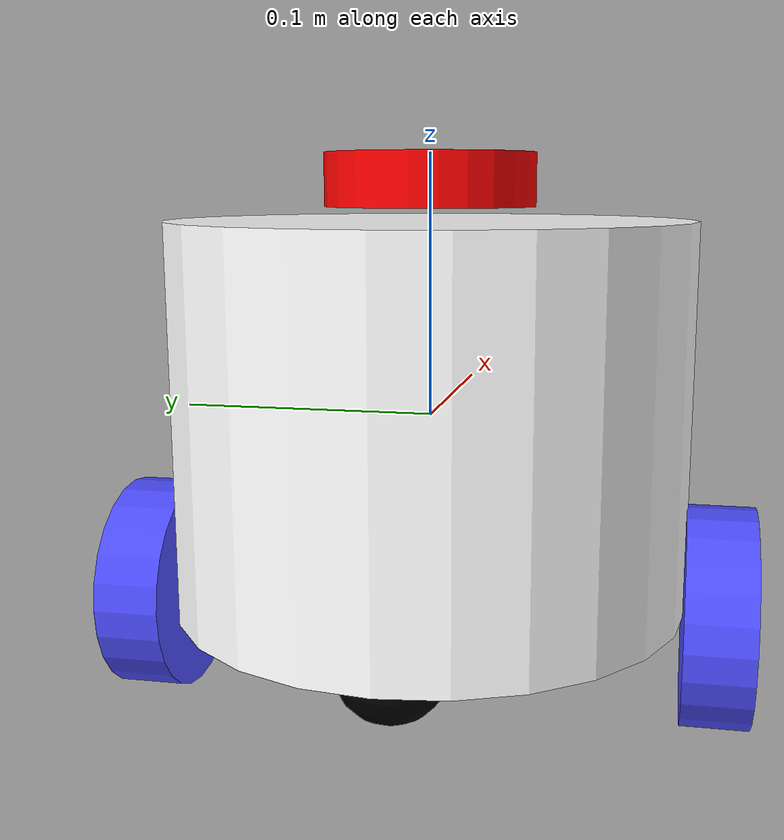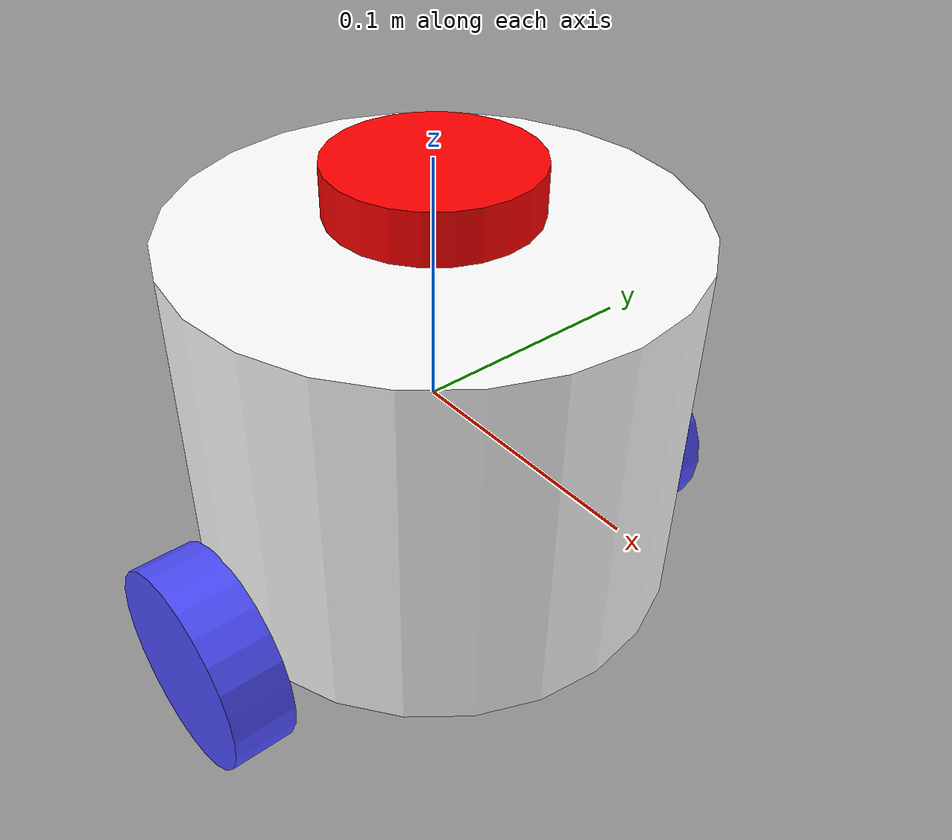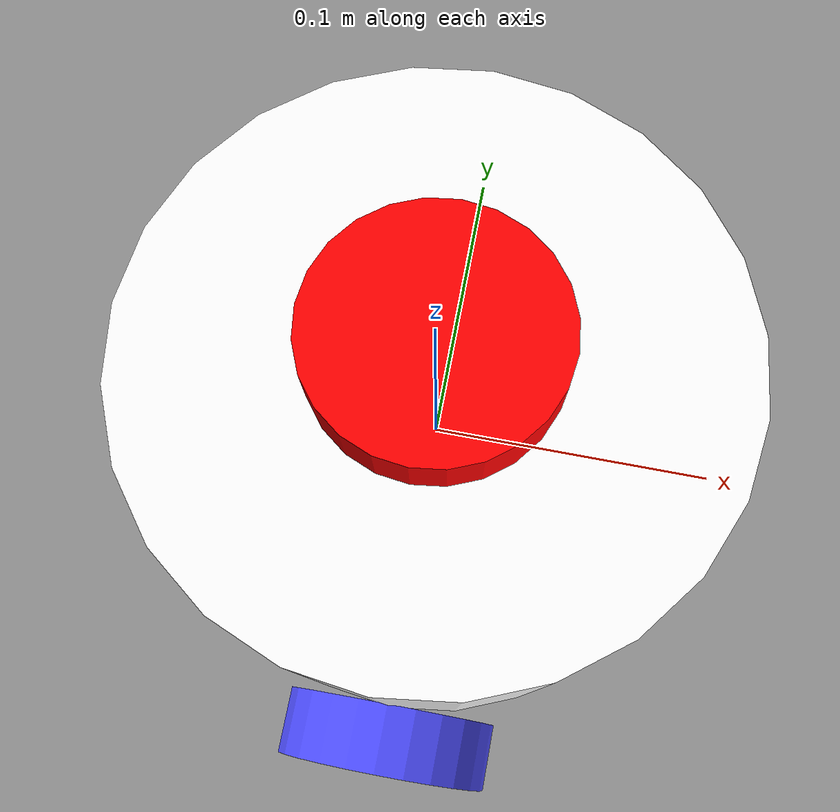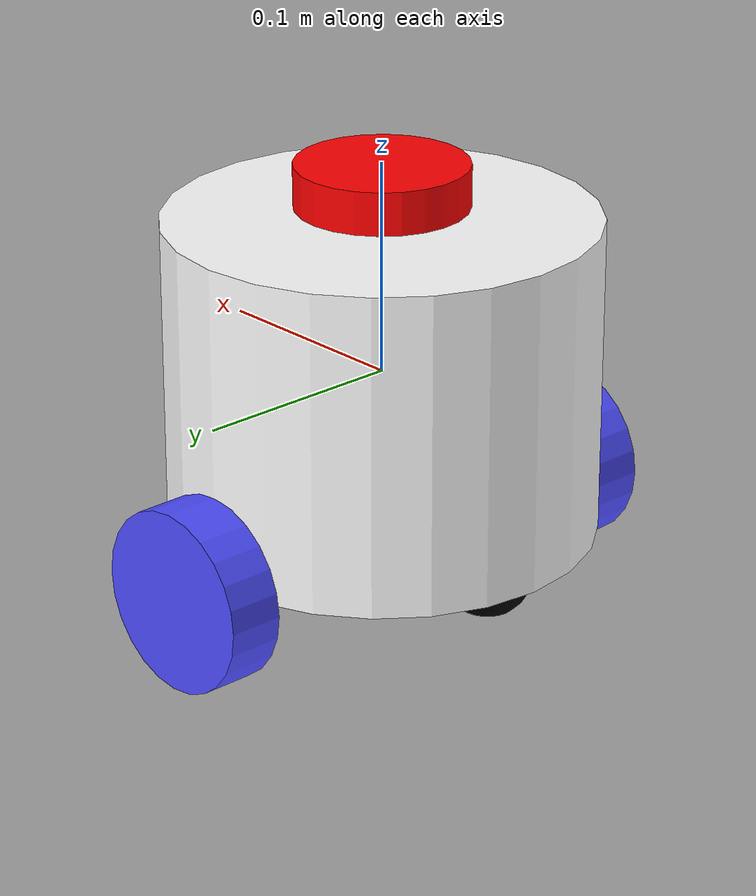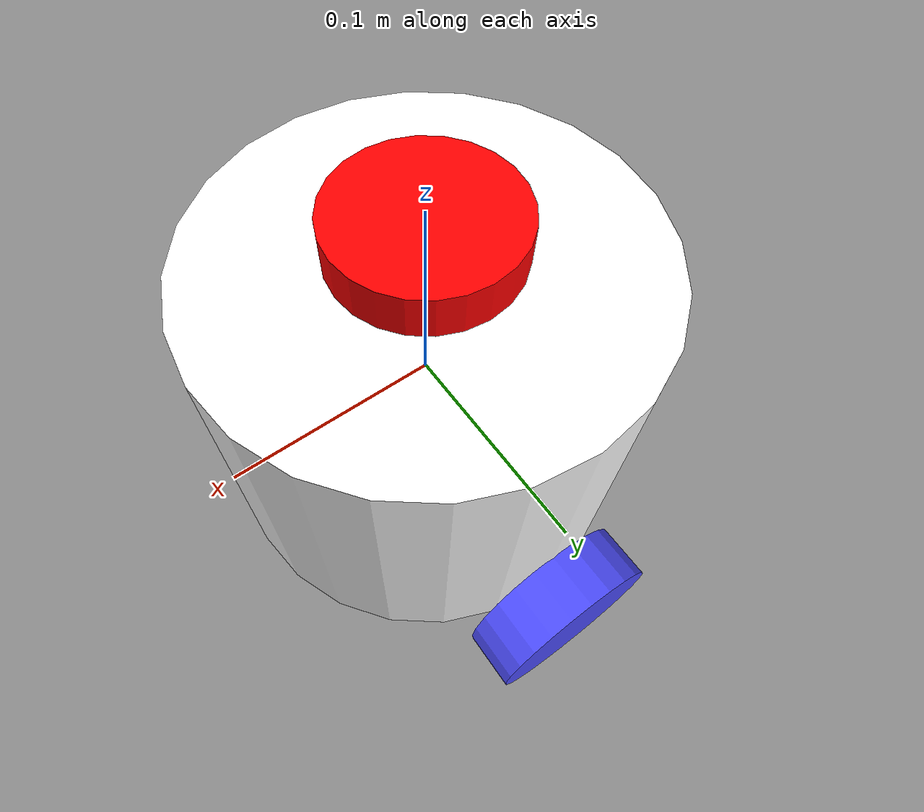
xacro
<?xml version="1.0"?>
<robot xmlns:xacro="http://www.ros.org/wiki/xacro"  name="robot">

    <xacro:arg name="use_ros2_control" default="true"/>
    <xacro:arg name="sim_mode" default="false"/>

    <xacro:include filename="robot_core.xacro" />

    <xacro:if value="$(arg use_ros2_control)">
        <xacro:include filename="ros2_control.xacro" />
    </xacro:if>
    <xacro:unless value="$(arg use_ros2_control)">
        <xacro:include filename="gazebo_control.xacro" />
    </xacro:unless>
    <xacro:include filename="lidar.xacro" />

</robot>

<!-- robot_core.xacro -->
<robot xmlns:xacro="http://www.ros.org/wiki/xacro">

    <xacro:include filename="inertial_macros.xacro"/>

    <material name="white">
        <color rgba="1 1 1 1"/>
    </material>

    <material name="orange">
        <color rgba="1 0.3 0.1 1"/>
    </material>

    <material name="blue">
        <color rgba="0.3 0.3 1 1"/>
    </material>

    <material name="black">
        <color rgba="0 0 0 1"/>
    </material>

    <material name="red">
        <color rgba="1 0 0 1"/>
    </material>

    <!-- base link -->
    <link name="base_link">
    </link>

    <!-- Base foot print -->
    <joint name="base_footprint_joint" type="fixed">
        <parent link="base_link"/>
        <child link="base_footprint"/>
        <origin xyz="0 0 0" rpy="0 0 0"/>
    </joint>

    <link name="base_footprint">
    </link>

    <!-- Chassis -->
    <joint name="chassis_joint" type="fixed">
        <parent link="base_link"/>
        <child link="chassis"/>
        <origin xyz="0 0 0" rpy="0 0 0"/>
    </joint>

    <link name="chassis">
        <visual>
            <origin xyz="0 0 0"/>
            <geometry>
                <cylinder radius="0.1" length="0.15"/>
            </geometry>
            <material name="white"/>
        </visual>

        <collision>
            <origin xyz="0 0 0"/>
            <geometry>
                <cylinder radius="0.1" length="0.15"/>
            </geometry>
        </collision>

        <xacro:inertial_cylinder mass="0.5" radius="0.1" length="0.15">
            <origin xyz="0.0 0.0 0.0" rpy="0.0 0.0 0.0"/>
        </xacro:inertial_cylinder>
    </link>

    <gazebo reference="chassis">
        <material>Gazebo/White</material>
    </gazebo>

    <!-- Left wheel -->
    <joint name="left_wheel_joint" type="continuous">
        <parent link="base_link"/>
        <child link="left_wheel"/>
        <origin xyz="0.0 0.1125 -0.075" rpy="-${pi/2} 0 0" />
        <axis xyz="0.0 0.0 1"/>
    </joint>

    <link name="left_wheel">
        <visual>
            <origin xyz="0 0 0"/>
            <geometry>
                <cylinder radius="0.0425" length="0.026"/>
            </geometry>
            <material name="blue"/>
        </visual>

        <collision>
            <origin xyz="0 0 0"/>
            <geometry>
                <sphere radius="0.0425"/>
            </geometry>
        </collision>

        <xacro:inertial_cylinder mass="0.1" radius="0.0425" length="0.026">
            <origin xyz="0.0 0.0 0.0" rpy="0.0 0.0 0.0"/>
        </xacro:inertial_cylinder>
    </link>

    <gazebo reference="left_wheel">
        <material>Gazebo/Blue</material>
    </gazebo>

    <!-- Right wheel -->
    <joint name="right_wheel_joint" type="continuous">
        <parent link="base_link"/>
        <child link="right_wheel"/>
        <origin xyz="0.0 -0.1125 -0.075" rpy="${pi/2} 0 0" />
        <axis xyz="0.0 0.0 -1"/>
    </joint>

    <link name="right_wheel">
        <visual>
            <origin xyz="0 0 0"/>
            <geometry>
                <cylinder radius="0.0425" length="0.026"/>
            </geometry>
            <material name="blue"/>
        </visual>

        <collision>
            <origin xyz="0 0 0"/>
            <geometry>
                <sphere radius="0.0425"/>
            </geometry>
        </collision>

        <xacro:inertial_cylinder mass="0.1" radius="0.0425" length="0.026">
            <origin xyz="0.0 0.0 0.0" rpy="0.0 0.0 0.0"/>
        </xacro:inertial_cylinder>
    </link>

    <gazebo reference="right_wheel">
        <material>Gazebo/Blue</material>
    </gazebo>

    <!-- Front Castor wheel -->
    <joint name="front_castor_wheel_joint" type="fixed">
        <parent link="chassis"/>
        <child link="front_castor_wheel"/>
        <origin xyz="0.07 0.0 -0.075" rpy="0.0 0.0 0.0"/>
    </joint>

    <link name="front_castor_wheel">
        <visual>
            <origin xyz="0 0 0"/>
            <geometry>
                <sphere radius="0.02125"/>
            </geometry>
            <material name="black"/>
        </visual>

        <collision>
            <origin xyz="0 0 0"/>
            <geometry>
                <sphere radius="0.0425"/>
            </geometry>
        </collision>

        <xacro:inertial_sphere mass="0.1" radius="0.0425">
            <origin xyz="0.0 0.0 0.0" rpy="0.0 0.0 0.0"/>
        </xacro:inertial_sphere>
    </link>

    <gazebo reference="front_castor_wheel">
        <material>Gazebo/Black</material>
        <mu1 value="0.001"/>
        <mu2 value="0.001"/>
    </gazebo>

    <!-- Back Castor wheel -->
    <joint name="back_castor_wheel_joint" type="fixed">
        <parent link="chassis"/>
        <child link="back_castor_wheel"/>
        <origin xyz="-0.07 0.0 -0.075" rpy="0.0 0.0 0.0"/>
    </joint>

    <link name="back_castor_wheel">
        <visual>
            <origin xyz="0 0 0"/>
            <geometry>
                <sphere radius="0.02125"/>
            </geometry>
            <material name="black"/>
        </visual>

        <collision>
            <origin xyz="0 0 0"/>
            <geometry>
                <sphere radius="0.0425"/>
            </geometry>
        </collision>

        <xacro:inertial_sphere mass="0.1" radius="0.0425">
            <origin xyz="0.0 0.0 0.0" rpy="0.0 0.0 0.0"/>
        </xacro:inertial_sphere>
    </link>

    <gazebo reference="back_castor_wheel">
        <material>Gazebo/Black</material>
        <mu1 value="0.001"/>
        <mu2 value="0.001"/>
    </gazebo>

</robot>

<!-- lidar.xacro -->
<robot xmlns:xacro="http://www.ros.org/wiki/xacro">

    <joint name="laser_joint" type="fixed">
        <parent link="chassis"/>
        <child link="laser_frame"/>
        <origin xyz="0.0 0.0 0.09" rpy="0.0 0.0 0.0"/>
    </joint>

    <link name="laser_frame">
        <visual>
            <origin xyz = "0 0 0"/>
            <geometry>
                <cylinder radius = "0.04" length = "0.02"/>
            </geometry>
            <material name="red"/>
        </visual>

        <collision>
            <origin xyz = "0 0 0"/>
            <geometry>
                <cylinder radius = "0.04" length = "0.02"/>
            </geometry>
        </collision>

        <xacro:inertial_cylinder mass= "0.1" radius="0.04" length="0.02">
            <origin xyz="0.0 0.0 0." rpy="0.0 0.0 0.0"/>

        </xacro:inertial_cylinder>
    </link>

    <gazebo reference="laser_frame">
        <material>Gazebo/Red</material>
        <sensor name="laser" type="ray">
            <pose>0 0 0 0 0 0</pose>
            <visualize>true</visualize>
            <update_rate>60</update_rate>
            <ray>
                <scan>
                    <horizontal>
                        <samples>360</samples>
                        <resolution>0.6</resolution>
                        <min_angle>-3.14</min_angle>
                        <max_angle>3.14</max_angle>
                    </horizontal>
                </scan>
                <range>
                    <min>0.3</min>
                    <max>12</max>
                    <resolution>0.01</resolution>
                </range>
            </ray>
            <plugin name="laser_controller" filename="libgazebo_ros_ray_sensor.so">
                <ros>
                    <argument>~/out:=scan</argument>
                </ros>
                <output_type>sensor_msgs/LaserScan</output_type>
                <frame_name>laser_frame</frame_name>
            </plugin>
        </sensor>

    </gazebo>

</robot>
